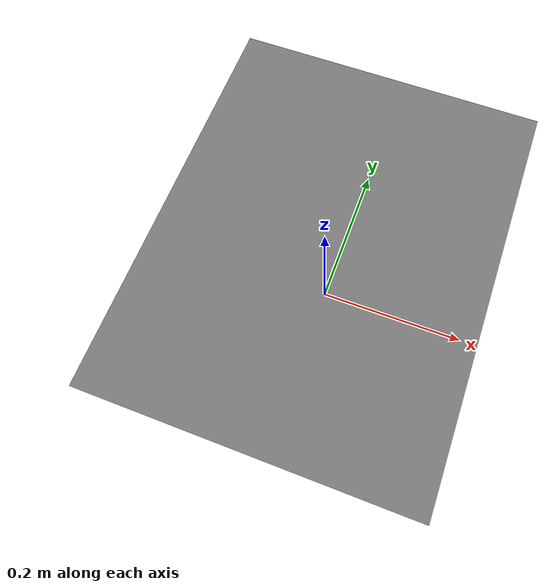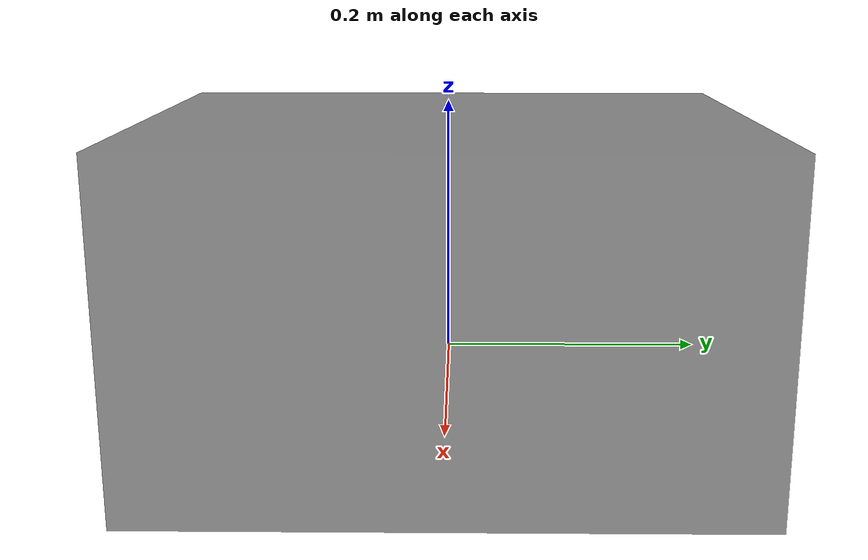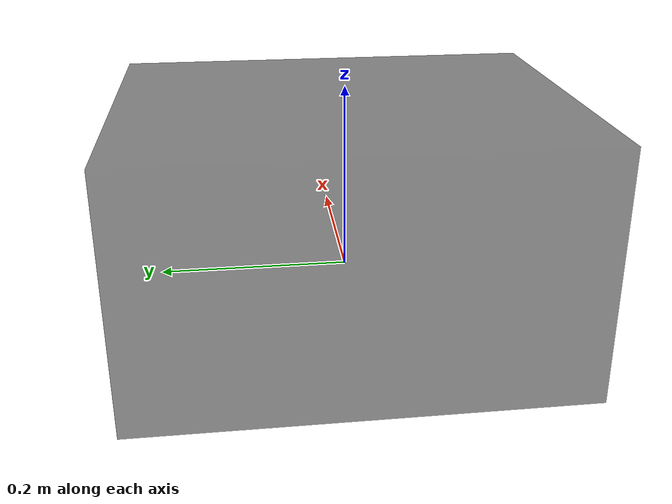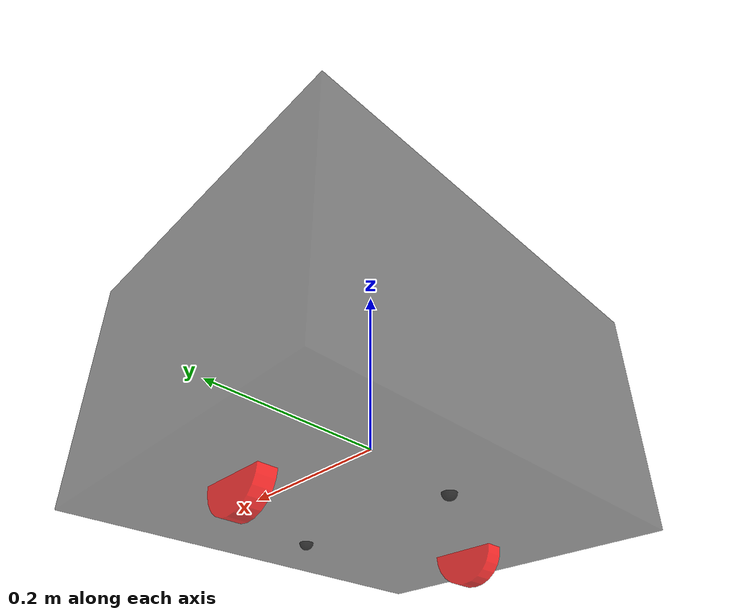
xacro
<robot name="my_robot_base" xmlns:xacro="http://www.ros.org/wiki/xacro">
	<material name="black">
		<color rgba="0 0 0 1" />
	</material>

	<material name="yellow">
		<color rgba="1 0.4 0 1" />
	</material>

	<material name="red">
		<color rgba="1 0 0 1" />
	</material>
	<material name="blue">
		<color rgba="0 0 1 1" />
	</material>

    <xacro:property name="wheel_mass"   value="1"/>
    <xacro:property name="wheel_radius" value="0.037"/>
    <xacro:property name="wheel_length" value="0.02"/>
    <xacro:property name="M_PI" value="3.1415926"/>
    <xacro:property name="base_mass" value="5"/>
    <xacro:property name="wheel_joint_x" value="0.054"/>
    <xacro:property name="wheel_joint_y" value="0.1515"/>
    <xacro:property name="wheel_joint_z" value="0.00"/>
    <xacro:property name="base_a" value="0.374"/>
    <xacro:property name="base_b" value="0.47"/>
    <xacro:property name="base_h" value="0.264"/>

    <xacro:macro name="cylinder_inertial_matrix" params="m r h">
        <inertial>
            <mass value="${m}" />
            <inertia ixx="${m*(3*r*r+h*h)/12}" ixy = "0" ixz = "0"
                iyy="${m*(3*r*r+h*h)/12}" iyz = "0"
                izz="${m*r*r/2}" />
	</inertial>
    </xacro:macro>

    <xacro:macro name="box_inertial_matrix" params="m a b h">
	<inertial>
            <mass value="${m}" />
	    <!-- xacro has a terriable issue, it can't calculate h*h, but a*a -->
	    <inertia ixx="${m*(b*b+0.16*0.16)/12}" ixy="0" ixz="0"
		iyy="${m*(0.16*0.16+a*a)/12}" iyz="0"
		izz="${m*(a*a+b*b)/12}" />
	</inertial>
    </xacro:macro>

    <xacro:property name="footprint_radius" value="0.001" />
    <link name="base_footprint">
        <visual>
            <geometry>
                <sphere radius="${footprint_radius}" />
            </geometry>
        </visual>
    </link>
    <link name="base_link">
        <visual>
            <geometry>
                <box size="${base_a} ${base_b} ${base_h}"/>
            </geometry>

            <origin xyz="0 0 0" rpy="0 0 0" />

            <material name="body_color">
                <color rgba="0 0 0 0.5" />
            </material>
        </visual>
        <collision>
            <origin xyz=" 0 0 0" rpy="0 0 0" />
            <geometry>
                <box size="${base_a} ${base_b} ${base_h}"/>
            </geometry>
        </collision>
        <box_inertial_matrix  m="${base_mass}" a="${base_a}" b="${base_b}" h="{base_h}" />
    </link>

    <joint name="link2footprint" type="fixed">
        <parent link="base_footprint"  />
        <child link="base_link" />
        <origin xyz="0 0 0.055" rpy="0 0 0" />
    </joint>

    <xacro:macro name="wheel_func" params="wheel_name flag">

        <link name="${wheel_name}_wheel">
            <visual>
                <geometry>
                    <cylinder radius="${wheel_radius}" length = "${wheel_length}"/>
                </geometry>

                <origin xyz="0 0 0" rpy="${M_PI/2} 0 0" />

                <material name="wheel_color">
                    <color rgba="1 0 0 0.8" />
                </material>
            </visual>
            <collision>
                <origin xyz="0 0 0" rpy="${M_PI/2} 0 0" />
                <geometry>
                    <cylinder radius="${wheel_radius}" length = "${wheel_length}"/>
                </geometry>
            </collision>
            <cylinder_inertial_matrix  m="${wheel_mass}" r="${wheel_radius}" h="${wheel_length}" />

        </link>

        <joint name="${wheel_name}2link" type="continuous">
            <parent link="base_link"  />
            <child link="${wheel_name}_wheel" />
            <origin xyz="0 ${wheel_joint_y* flag} ${-base_h/2}" rpy="0 0 0" />
            <axis xyz="0 1 0" />
        </joint>

    </xacro:macro>

    <xacro:wheel_func wheel_name="left" flag="1" />
    <xacro:wheel_func wheel_name="right" flag="-1" />

    <xacro:property name="small_wheel_radius" value="0.0075" />

    <xacro:macro name="small_wheel_func" params="small_wheel_name flag">
        <link name="${small_wheel_name}_wheel">
            <visual>
                <geometry>
                    <sphere radius="${small_wheel_radius}" />
                </geometry>

                <origin xyz="0 0 0" rpy="0 0 0" />

                <material name="wheel_color">
                    <color rgba="0 0 0 0.8" />
                </material>
            </visual>

        </link>

        <joint name="${small_wheel_name}2link" type="continuous">
            <parent link="base_link"  />
            <child link="${small_wheel_name}_wheel" />

            <origin xyz="${0.1 * flag} 0 ${-base_h/2}" rpy="0 0 0" />
            <axis xyz="0 1 0" />
        </joint>

    </xacro:macro >
    <xacro:small_wheel_func small_wheel_name="front" flag="1"/>
    <xacro:small_wheel_func small_wheel_name="back" flag="-1"/>

</robot>
